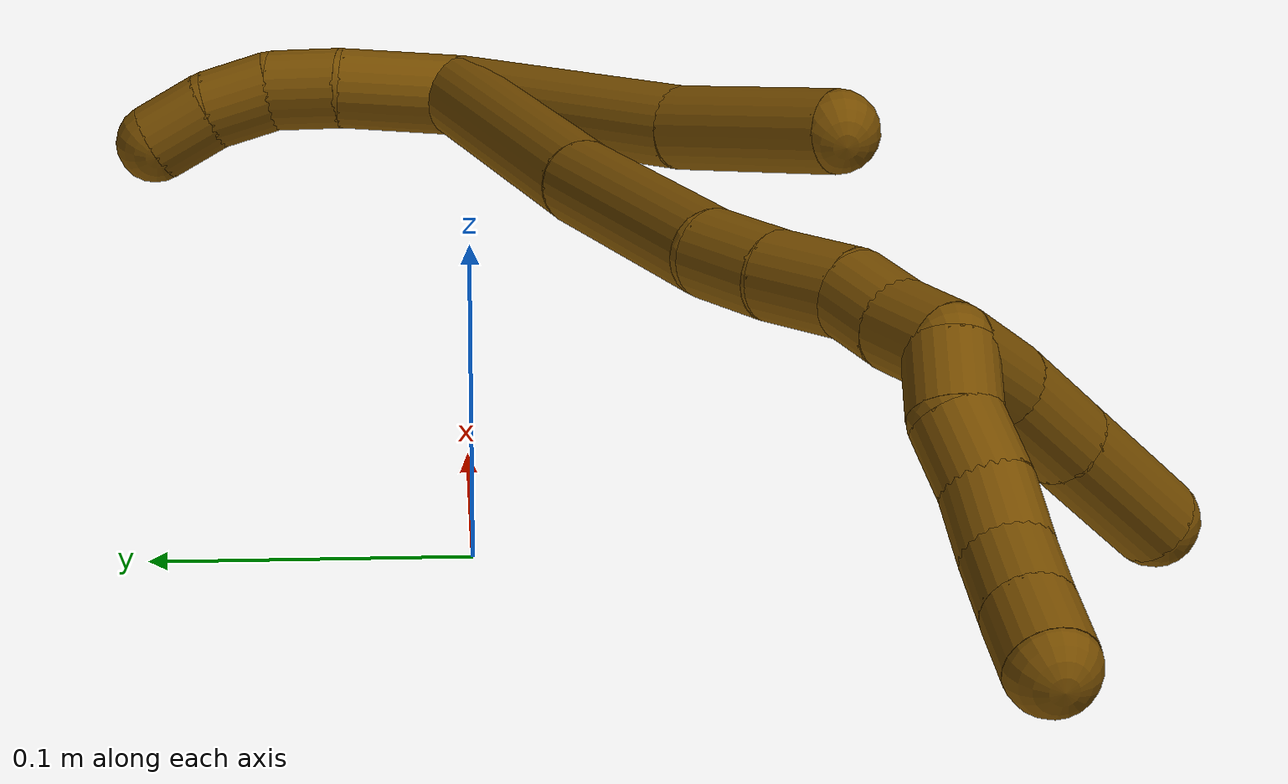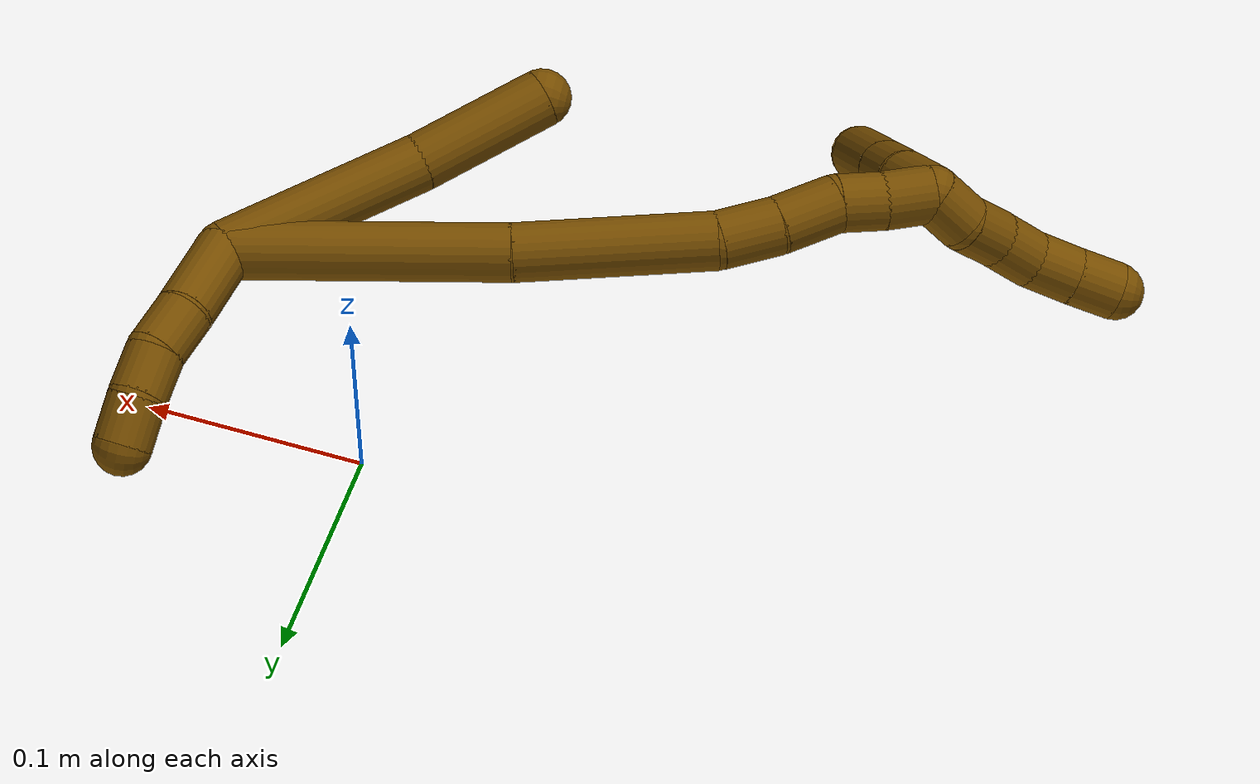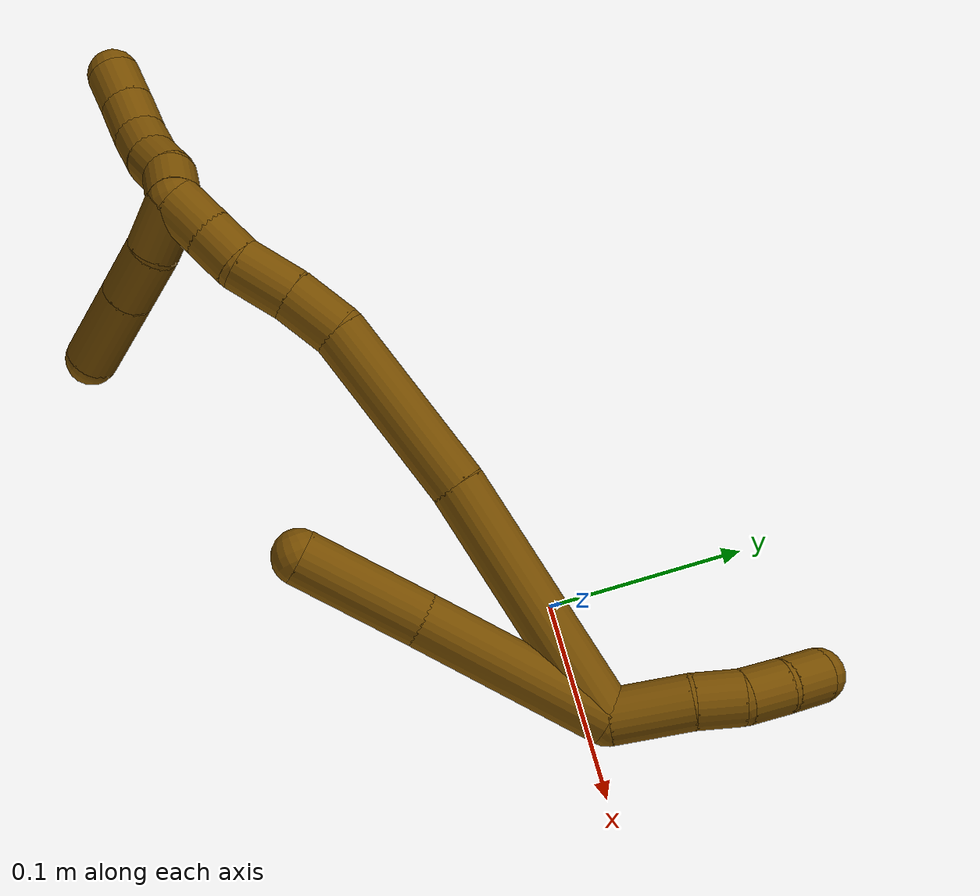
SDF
<sdf version="1.7">
 <world name="default">
  <model name="12">
   <static>0</static>
   <link name="12">
    <collision name="collision-cylinder-e_1_2_8">
     <pose>-0.028532 0.008666 -0.034097 -2.89271 -0.681418 2.46321</pose>
     <geometry><cylinder><radius>0.0125</radius><length>0.090594</length></cylinder></geometry>
     <surface>
      <friction><ode><mu>1.16</mu><mu2>1.16</mu2><slip1>0</slip1><slip2>0</slip2></ode></friction>
      <contact><ode><kp>1e+06</kp><kd>1</kd><max_vel>0</max_vel><min_depth>0.001</min_depth></ode></contact>
     </surface>
    </collision>
    <visual name="visual-cylinder-e_1_2_8">
     <pose>-0.028532 0.008666 -0.034097 -2.89271 -0.681418 2.46321</pose>
     <geometry><cylinder><radius>0.0125</radius><length>0.090594</length></cylinder></geometry>
     <material><ambient>0.466667 0.301961 0 1</ambient></material>
    </visual>
    <collision name="collision-cylinder-e_2_8_6">
     <pose>-0.075736 0.025623 -0.089757 -2.77451 -0.679736 2.17471</pose>
     <geometry><cylinder><radius>0.0125</radius><length>0.059406</length></cylinder></geometry>
     <surface>
      <friction><ode><mu>1.16</mu><mu2>1.16</mu2><slip1>0</slip1><slip2>0</slip2></ode></friction>
      <contact><ode><kp>1e+06</kp><kd>1</kd><max_vel>0</max_vel><min_depth>0.001</min_depth></ode></contact>
     </surface>
    </collision>
    <visual name="visual-cylinder-e_2_8_6">
     <pose>-0.075736 0.025623 -0.089757 -2.77451 -0.679736 2.17471</pose>
     <geometry><cylinder><radius>0.0125</radius><length>0.059406</length></cylinder></geometry>
     <material><ambient>0.466667 0.301961 0 1</ambient></material>
    </visual>
    <collision name="collision-cylinder-e_1_2_9">
     <pose>0.01803 -0.000407 0.004011 0.101199 1.35082 0.081095</pose>
     <geometry><cylinder><radius>0.0125</radius><length>0.036951</length></cylinder></geometry>
     <surface>
      <friction><ode><mu>1.16</mu><mu2>1.16</mu2><slip1>0</slip1><slip2>0</slip2></ode></friction>
      <contact><ode><kp>1e+06</kp><kd>1</kd><max_vel>0</max_vel><min_depth>0.001</min_depth></ode></contact>
     </surface>
    </collision>
    <visual name="visual-cylinder-e_1_2_9">
     <pose>0.01803 -0.000407 0.004011 0.101199 1.35082 0.081095</pose>
     <geometry><cylinder><radius>0.0125</radius><length>0.036951</length></cylinder></geometry>
     <material><ambient>0.466667 0.301961 0 1</ambient></material>
    </visual>
    <collision name="collision-cylinder-e_2_9_10">
     <pose>0.046439 -0.002536 0.011242 0.490889 1.23254 0.351193</pose>
     <geometry><cylinder><radius>0.0125</radius><length>0.022005</length></cylinder></geometry>
     <surface>
      <friction><ode><mu>1.16</mu><mu2>1.16</mu2><slip1>0</slip1><slip2>0</slip2></ode></friction>
      <contact><ode><kp>1e+06</kp><kd>1</kd><max_vel>0</max_vel><min_depth>0.001</min_depth></ode></contact>
     </surface>
    </collision>
    <visual name="visual-cylinder-e_2_9_10">
     <pose>0.046439 -0.002536 0.011242 0.490889 1.23254 0.351193</pose>
     <geometry><cylinder><radius>0.0125</radius><length>0.022005</length></cylinder></geometry>
     <material><ambient>0.466667 0.301961 0 1</ambient></material>
    </visual>
    <collision name="collision-cylinder-e_3_10_11">
     <pose>0.0663 -0.007962 0.015453 1.30927 1.18643 0.955098</pose>
     <geometry><cylinder><radius>0.0125</radius><length>0.020457</length></cylinder></geometry>
     <surface>
      <friction><ode><mu>1.16</mu><mu2>1.16</mu2><slip1>0</slip1><slip2>0</slip2></ode></friction>
      <contact><ode><kp>1e+06</kp><kd>1</kd><max_vel>0</max_vel><min_depth>0.001</min_depth></ode></contact>
     </surface>
    </collision>
    <visual name="visual-cylinder-e_3_10_11">
     <pose>0.0663 -0.007962 0.015453 1.30927 1.18643 0.955098</pose>
     <geometry><cylinder><radius>0.0125</radius><length>0.020457</length></cylinder></geometry>
     <material><ambient>0.466667 0.301961 0 1</ambient></material>
    </visual>
    <collision name="collision-cylinder-e_4_11_5">
     <pose>0.08432 -0.017394 0.016959 1.4813 0.978028 0.905592</pose>
     <geometry><cylinder><radius>0.0125</radius><length>0.020588</length></cylinder></geometry>
     <surface>
      <friction><ode><mu>1.16</mu><mu2>1.16</mu2><slip1>0</slip1><slip2>0</slip2></ode></friction>
      <contact><ode><kp>1e+06</kp><kd>1</kd><max_vel>0</max_vel><min_depth>0.001</min_depth></ode></contact>
     </surface>
    </collision>
    <visual name="visual-cylinder-e_4_11_5">
     <pose>0.08432 -0.017394 0.016959 1.4813 0.978028 0.905592</pose>
     <geometry><cylinder><radius>0.0125</radius><length>0.020588</length></cylinder></geometry>
     <material><ambient>0.466667 0.301961 0 1</ambient></material>
    </visual>
    <collision name="collision-cylinder-e_1_2_12">
     <pose>-0.009936 0.010035 -0.057857 -2.96985 -0.167628 1.54642</pose>
     <geometry><cylinder><radius>0.0125</radius><length>0.11911</length></cylinder></geometry>
     <surface>
      <friction><ode><mu>1.16</mu><mu2>1.16</mu2><slip1>0</slip1><slip2>0</slip2></ode></friction>
      <contact><ode><kp>1e+06</kp><kd>1</kd><max_vel>0</max_vel><min_depth>0.001</min_depth></ode></contact>
     </surface>
    </collision>
    <visual name="visual-cylinder-e_1_2_12">
     <pose>-0.009936 0.010035 -0.057857 -2.96985 -0.167628 1.54642</pose>
     <geometry><cylinder><radius>0.0125</radius><length>0.11911</length></cylinder></geometry>
     <material><ambient>0.466667 0.301961 0 1</ambient></material>
    </visual>
    <collision name="collision-cylinder-e_2_12_13">
     <pose>-0.03056 0.027337 -0.156428 -2.96499 -0.252868 1.92485</pose>
     <geometry><cylinder><radius>0.0125</radius><length>0.085433</length></cylinder></geometry>
     <surface>
      <friction><ode><mu>1.16</mu><mu2>1.16</mu2><slip1>0</slip1><slip2>0</slip2></ode></friction>
      <contact><ode><kp>1e+06</kp><kd>1</kd><max_vel>0</max_vel><min_depth>0.001</min_depth></ode></contact>
     </surface>
    </collision>
    <visual name="visual-cylinder-e_2_12_13">
     <pose>-0.03056 0.027337 -0.156428 -2.96499 -0.252868 1.92485</pose>
     <geometry><cylinder><radius>0.0125</radius><length>0.085433</length></cylinder></geometry>
     <material><ambient>0.466667 0.301961 0 1</ambient></material>
    </visual>
    <collision name="collision-cylinder-e_3_13_14">
     <pose>-0.047629 0.036478 -0.208518 -2.97826 -0.505607 2.52793</pose>
     <geometry><cylinder><radius>0.0125</radius><length>0.026355</length></cylinder></geometry>
     <surface>
      <friction><ode><mu>1.16</mu><mu2>1.16</mu2><slip1>0</slip1><slip2>0</slip2></ode></friction>
      <contact><ode><kp>1e+06</kp><kd>1</kd><max_vel>0</max_vel><min_depth>0.001</min_depth></ode></contact>
     </surface>
    </collision>
    <visual name="visual-cylinder-e_3_13_14">
     <pose>-0.047629 0.036478 -0.208518 -2.97826 -0.505607 2.52793</pose>
     <geometry><cylinder><radius>0.0125</radius><length>0.026355</length></cylinder></geometry>
     <material><ambient>0.466667 0.301961 0 1</ambient></material>
    </visual>
    <collision name="collision-cylinder-e_4_14_15">
     <pose>-0.061932 0.040574 -0.23072 -2.93926 -0.62178 2.52957</pose>
     <geometry><cylinder><radius>0.0125</radius><length>0.027195</length></cylinder></geometry>
     <surface>
      <friction><ode><mu>1.16</mu><mu2>1.16</mu2><slip1>0</slip1><slip2>0</slip2></ode></friction>
      <contact><ode><kp>1e+06</kp><kd>1</kd><max_vel>0</max_vel><min_depth>0.001</min_depth></ode></contact>
     </surface>
    </collision>
    <visual name="visual-cylinder-e_4_14_15">
     <pose>-0.061932 0.040574 -0.23072 -2.93926 -0.62178 2.52957</pose>
     <geometry><cylinder><radius>0.0125</radius><length>0.027195</length></cylinder></geometry>
     <material><ambient>0.466667 0.301961 0 1</ambient></material>
    </visual>
    <collision name="collision-cylinder-e_5_15_16">
     <pose>-0.073679 0.04278 -0.250959 3.14004 -0.386145 -3.13363</pose>
     <geometry><cylinder><radius>0.0125</radius><length>0.02032</length></cylinder></geometry>
     <surface>
      <friction><ode><mu>1.16</mu><mu2>1.16</mu2><slip1>0</slip1><slip2>0</slip2></ode></friction>
      <contact><ode><kp>1e+06</kp><kd>1</kd><max_vel>0</max_vel><min_depth>0.001</min_depth></ode></contact>
     </surface>
    </collision>
    <visual name="visual-cylinder-e_5_15_16">
     <pose>-0.073679 0.04278 -0.250959 3.14004 -0.386145 -3.13363</pose>
     <geometry><cylinder><radius>0.0125</radius><length>0.02032</length></cylinder></geometry>
     <material><ambient>0.466667 0.301961 0 1</ambient></material>
    </visual>
    <collision name="collision-cylinder-e_6_16_1">
     <pose>-0.081682 0.044106 -0.270233 -3.00645 -0.397331 2.49302</pose>
     <geometry><cylinder><radius>0.0125</radius><length>0.021587</length></cylinder></geometry>
     <surface>
      <friction><ode><mu>1.16</mu><mu2>1.16</mu2><slip1>0</slip1><slip2>0</slip2></ode></friction>
      <contact><ode><kp>1e+06</kp><kd>1</kd><max_vel>0</max_vel><min_depth>0.001</min_depth></ode></contact>
     </surface>
    </collision>
    <visual name="visual-cylinder-e_6_16_1">
     <pose>-0.081682 0.044106 -0.270233 -3.00645 -0.397331 2.49302</pose>
     <geometry><cylinder><radius>0.0125</radius><length>0.021587</length></cylinder></geometry>
     <material><ambient>0.466667 0.301961 0 1</ambient></material>
    </visual>
    <collision name="collision-cylinder-e_1_1_17">
     <pose>-0.095086 0.037438 -0.274602 0.969706 -0.759856 -0.414683</pose>
     <geometry><cylinder><radius>0.0125</radius><length>0.026794</length></cylinder></geometry>
     <surface>
      <friction><ode><mu>1.16</mu><mu2>1.16</mu2><slip1>0</slip1><slip2>0</slip2></ode></friction>
      <contact><ode><kp>1e+06</kp><kd>1</kd><max_vel>0</max_vel><min_depth>0.001</min_depth></ode></contact>
     </surface>
    </collision>
    <visual name="visual-cylinder-e_1_1_17">
     <pose>-0.095086 0.037438 -0.274602 0.969706 -0.759856 -0.414683</pose>
     <geometry><cylinder><radius>0.0125</radius><length>0.026794</length></cylinder></geometry>
     <material><ambient>0.466667 0.301961 0 1</ambient></material>
    </visual>
    <collision name="collision-cylinder-e_2_17_18">
     <pose>-0.114663 0.019431 -0.26548 1.22253 -0.771722 -0.554696</pose>
     <geometry><cylinder><radius>0.0125</radius><length>0.029681</length></cylinder></geometry>
     <surface>
      <friction><ode><mu>1.16</mu><mu2>1.16</mu2><slip1>0</slip1><slip2>0</slip2></ode></friction>
      <contact><ode><kp>1e+06</kp><kd>1</kd><max_vel>0</max_vel><min_depth>0.001</min_depth></ode></contact>
     </surface>
    </collision>
    <visual name="visual-cylinder-e_2_17_18">
     <pose>-0.114663 0.019431 -0.26548 1.22253 -0.771722 -0.554696</pose>
     <geometry><cylinder><radius>0.0125</radius><length>0.029681</length></cylinder></geometry>
     <material><ambient>0.466667 0.301961 0 1</ambient></material>
    </visual>
    <collision name="collision-cylinder-e_3_18_4">
     <pose>-0.140221 -0.005208 -0.25656 1.22408 -0.773735 -0.557084</pose>
     <geometry><cylinder><radius>0.0125</radius><length>0.043526</length></cylinder></geometry>
     <surface>
      <friction><ode><mu>1.16</mu><mu2>1.16</mu2><slip1>0</slip1><slip2>0</slip2></ode></friction>
      <contact><ode><kp>1e+06</kp><kd>1</kd><max_vel>0</max_vel><min_depth>0.001</min_depth></ode></contact>
     </surface>
    </collision>
    <visual name="visual-cylinder-e_3_18_4">
     <pose>-0.140221 -0.005208 -0.25656 1.22408 -0.773735 -0.557084</pose>
     <geometry><cylinder><radius>0.0125</radius><length>0.043526</length></cylinder></geometry>
     <material><ambient>0.466667 0.301961 0 1</ambient></material>
    </visual>
    <collision name="collision-cylinder-e_1_1_19">
     <pose>-0.085164 0.039896 -0.288383 2.55147 0.069514 0.227819</pose>
     <geometry><cylinder><radius>0.0125</radius><length>0.02</length></cylinder></geometry>
     <surface>
      <friction><ode><mu>1.16</mu><mu2>1.16</mu2><slip1>0</slip1><slip2>0</slip2></ode></friction>
      <contact><ode><kp>1e+06</kp><kd>1</kd><max_vel>0</max_vel><min_depth>0.001</min_depth></ode></contact>
     </surface>
    </collision>
    <visual name="visual-cylinder-e_1_1_19">
     <pose>-0.085164 0.039896 -0.288383 2.55147 0.069514 0.227819</pose>
     <geometry><cylinder><radius>0.0125</radius><length>0.02</length></cylinder></geometry>
     <material><ambient>0.466667 0.301961 0 1</ambient></material>
    </visual>
    <collision name="collision-cylinder-e_2_19_20">
     <pose>-0.087067 0.028872 -0.304628 2.53902 -0.262836 -0.804356</pose>
     <geometry><cylinder><radius>0.0125</radius><length>0.02</length></cylinder></geometry>
     <surface>
      <friction><ode><mu>1.16</mu><mu2>1.16</mu2><slip1>0</slip1><slip2>0</slip2></ode></friction>
      <contact><ode><kp>1e+06</kp><kd>1</kd><max_vel>0</max_vel><min_depth>0.001</min_depth></ode></contact>
     </surface>
    </collision>
    <visual name="visual-cylinder-e_2_19_20">
     <pose>-0.087067 0.028872 -0.304628 2.53902 -0.262836 -0.804356</pose>
     <geometry><cylinder><radius>0.0125</radius><length>0.02</length></cylinder></geometry>
     <material><ambient>0.466667 0.301961 0 1</ambient></material>
    </visual>
    <collision name="collision-cylinder-e_3_20_21">
     <pose>-0.090726 0.018531 -0.321254 2.62996 -0.106264 -0.401202</pose>
     <geometry><cylinder><radius>0.0125</radius><length>0.02</length></cylinder></geometry>
     <surface>
      <friction><ode><mu>1.16</mu><mu2>1.16</mu2><slip1>0</slip1><slip2>0</slip2></ode></friction>
      <contact><ode><kp>1e+06</kp><kd>1</kd><max_vel>0</max_vel><min_depth>0.001</min_depth></ode></contact>
     </surface>
    </collision>
    <visual name="visual-cylinder-e_3_20_21">
     <pose>-0.090726 0.018531 -0.321254 2.62996 -0.106264 -0.401202</pose>
     <geometry><cylinder><radius>0.0125</radius><length>0.02</length></cylinder></geometry>
     <material><ambient>0.466667 0.301961 0 1</ambient></material>
    </visual>
    <collision name="collision-cylinder-e_4_21_22">
     <pose>-0.092143 0.011335 -0.339643 2.90661 -0.035596 -0.299341</pose>
     <geometry><cylinder><radius>0.0125</radius><length>0.02</length></cylinder></geometry>
     <surface>
      <friction><ode><mu>1.16</mu><mu2>1.16</mu2><slip1>0</slip1><slip2>0</slip2></ode></friction>
      <contact><ode><kp>1e+06</kp><kd>1</kd><max_vel>0</max_vel><min_depth>0.001</min_depth></ode></contact>
     </surface>
    </collision>
    <visual name="visual-cylinder-e_4_21_22">
     <pose>-0.092143 0.011335 -0.339643 2.90661 -0.035596 -0.299341</pose>
     <geometry><cylinder><radius>0.0125</radius><length>0.02</length></cylinder></geometry>
     <material><ambient>0.466667 0.301961 0 1</ambient></material>
    </visual>
    <collision name="collision-cylinder-e_5_22_3">
     <pose>-0.092996 0.006957 -0.359137 2.93475 -0.049796 -0.470971</pose>
     <geometry><cylinder><radius>0.0125</radius><length>0.02</length></cylinder></geometry>
     <surface>
      <friction><ode><mu>1.16</mu><mu2>1.16</mu2><slip1>0</slip1><slip2>0</slip2></ode></friction>
      <contact><ode><kp>1e+06</kp><kd>1</kd><max_vel>0</max_vel><min_depth>0.001</min_depth></ode></contact>
     </surface>
    </collision>
    <visual name="visual-cylinder-e_5_22_3">
     <pose>-0.092996 0.006957 -0.359137 2.93475 -0.049796 -0.470971</pose>
     <geometry><cylinder><radius>0.0125</radius><length>0.02</length></cylinder></geometry>
     <material><ambient>0.466667 0.301961 0 1</ambient></material>
    </visual>
    <collision name="collision-sphere-3">
     <pose>-0.093494 0.004906 -0.368912 0 -0 0</pose>
     <geometry><sphere><radius>0.0125</radius></sphere></geometry>
     <surface>
      <friction><ode><mu>1.16</mu><mu2>1.16</mu2><slip1>0</slip1><slip2>0</slip2></ode></friction>
      <contact><ode><kp>1e+06</kp><kd>1</kd><max_vel>0</max_vel><min_depth>0.001</min_depth></ode></contact>
     </surface>
    </collision>
    <visual name="visual-sphere-3">
     <pose>-0.093494 0.004906 -0.368912 0 -0 0</pose>
     <geometry><sphere><radius>0.0125</radius></sphere></geometry>
     <material><ambient>0.466667 0.301961 0 1</ambient></material>
    </visual>
    <collision name="collision-sphere-22">
     <pose>-0.092498 0.009009 -0.349362 0 -0 0</pose>
     <geometry><sphere><radius>0.0125</radius></sphere></geometry>
     <surface>
      <friction><ode><mu>1.16</mu><mu2>1.16</mu2><slip1>0</slip1><slip2>0</slip2></ode></friction>
      <contact><ode><kp>1e+06</kp><kd>1</kd><max_vel>0</max_vel><min_depth>0.001</min_depth></ode></contact>
     </surface>
    </collision>
    <visual name="visual-sphere-22">
     <pose>-0.092498 0.009009 -0.349362 0 -0 0</pose>
     <geometry><sphere><radius>0.0125</radius></sphere></geometry>
     <material><ambient>0.466667 0.301961 0 1</ambient></material>
    </visual>
    <collision name="collision-sphere-21">
     <pose>-0.091787 0.013662 -0.329924 0 -0 0</pose>
     <geometry><sphere><radius>0.0125</radius></sphere></geometry>
     <surface>
      <friction><ode><mu>1.16</mu><mu2>1.16</mu2><slip1>0</slip1><slip2>0</slip2></ode></friction>
      <contact><ode><kp>1e+06</kp><kd>1</kd><max_vel>0</max_vel><min_depth>0.001</min_depth></ode></contact>
     </surface>
    </collision>
    <visual name="visual-sphere-21">
     <pose>-0.091787 0.013662 -0.329924 0 -0 0</pose>
     <geometry><sphere><radius>0.0125</radius></sphere></geometry>
     <material><ambient>0.466667 0.301961 0 1</ambient></material>
    </visual>
    <collision name="collision-sphere-20">
     <pose>-0.089665 0.023399 -0.312584 0 -0 0</pose>
     <geometry><sphere><radius>0.0125</radius></sphere></geometry>
     <surface>
      <friction><ode><mu>1.16</mu><mu2>1.16</mu2><slip1>0</slip1><slip2>0</slip2></ode></friction>
      <contact><ode><kp>1e+06</kp><kd>1</kd><max_vel>0</max_vel><min_depth>0.001</min_depth></ode></contact>
     </surface>
    </collision>
    <visual name="visual-sphere-20">
     <pose>-0.089665 0.023399 -0.312584 0 -0 0</pose>
     <geometry><sphere><radius>0.0125</radius></sphere></geometry>
     <material><ambient>0.466667 0.301961 0 1</ambient></material>
    </visual>
    <collision name="collision-sphere-19">
     <pose>-0.084469 0.034345 -0.296672 0 -0 0</pose>
     <geometry><sphere><radius>0.0125</radius></sphere></geometry>
     <surface>
      <friction><ode><mu>1.16</mu><mu2>1.16</mu2><slip1>0</slip1><slip2>0</slip2></ode></friction>
      <contact><ode><kp>1e+06</kp><kd>1</kd><max_vel>0</max_vel><min_depth>0.001</min_depth></ode></contact>
     </surface>
    </collision>
    <visual name="visual-sphere-19">
     <pose>-0.084469 0.034345 -0.296672 0 -0 0</pose>
     <geometry><sphere><radius>0.0125</radius></sphere></geometry>
     <material><ambient>0.466667 0.301961 0 1</ambient></material>
    </visual>
    <collision name="collision-sphere-11">
     <pose>0.075783 -0.011667 0.016445 0 -0 0</pose>
     <geometry><sphere><radius>0.0125</radius></sphere></geometry>
     <surface>
      <friction><ode><mu>1.16</mu><mu2>1.16</mu2><slip1>0</slip1><slip2>0</slip2></ode></friction>
      <contact><ode><kp>1e+06</kp><kd>1</kd><max_vel>0</max_vel><min_depth>0.001</min_depth></ode></contact>
     </surface>
    </collision>
    <visual name="visual-sphere-11">
     <pose>0.075783 -0.011667 0.016445 0 -0 0</pose>
     <geometry><sphere><radius>0.0125</radius></sphere></geometry>
     <material><ambient>0.466667 0.301961 0 1</ambient></material>
    </visual>
    <collision name="collision-sphere-10">
     <pose>0.056818 -0.004257 0.014461 0 -0 0</pose>
     <geometry><sphere><radius>0.0125</radius></sphere></geometry>
     <surface>
      <friction><ode><mu>1.16</mu><mu2>1.16</mu2><slip1>0</slip1><slip2>0</slip2></ode></friction>
      <contact><ode><kp>1e+06</kp><kd>1</kd><max_vel>0</max_vel><min_depth>0.001</min_depth></ode></contact>
     </surface>
    </collision>
    <visual name="visual-sphere-10">
     <pose>0.056818 -0.004257 0.014461 0 -0 0</pose>
     <geometry><sphere><radius>0.0125</radius></sphere></geometry>
     <material><ambient>0.466667 0.301961 0 1</ambient></material>
    </visual>
    <collision name="collision-sphere-6">
     <pose>-0.094407 0.033914 -0.111319 0 -0 0</pose>
     <geometry><sphere><radius>0.0125</radius></sphere></geometry>
     <surface>
      <friction><ode><mu>1.16</mu><mu2>1.16</mu2><slip1>0</slip1><slip2>0</slip2></ode></friction>
      <contact><ode><kp>1e+06</kp><kd>1</kd><max_vel>0</max_vel><min_depth>0.001</min_depth></ode></contact>
     </surface>
    </collision>
    <visual name="visual-sphere-6">
     <pose>-0.094407 0.033914 -0.111319 0 -0 0</pose>
     <geometry><sphere><radius>0.0125</radius></sphere></geometry>
     <material><ambient>0.466667 0.301961 0 1</ambient></material>
    </visual>
    <collision name="collision-sphere-9">
     <pose>0.03606 -0.000815 0.008022 0 -0 0</pose>
     <geometry><sphere><radius>0.0125</radius></sphere></geometry>
     <surface>
      <friction><ode><mu>1.16</mu><mu2>1.16</mu2><slip1>0</slip1><slip2>0</slip2></ode></friction>
      <contact><ode><kp>1e+06</kp><kd>1</kd><max_vel>0</max_vel><min_depth>0.001</min_depth></ode></contact>
     </surface>
    </collision>
    <visual name="visual-sphere-9">
     <pose>0.03606 -0.000815 0.008022 0 -0 0</pose>
     <geometry><sphere><radius>0.0125</radius></sphere></geometry>
     <material><ambient>0.466667 0.301961 0 1</ambient></material>
    </visual>
    <collision name="collision-sphere-2">
     <geometry><sphere><radius>0.0125</radius></sphere></geometry>
     <surface>
      <friction><ode><mu>1.16</mu><mu2>1.16</mu2><slip1>0</slip1><slip2>0</slip2></ode></friction>
      <contact><ode><kp>1e+06</kp><kd>1</kd><max_vel>0</max_vel><min_depth>0.001</min_depth></ode></contact>
     </surface>
    </collision>
    <visual name="visual-sphere-2">
     <geometry><sphere><radius>0.0125</radius></sphere></geometry>
     <material><ambient>0.466667 0.301961 0 1</ambient></material>
    </visual>
    <collision name="collision-sphere-8">
     <pose>-0.057065 0.017332 -0.068194 0 -0 0</pose>
     <geometry><sphere><radius>0.0125</radius></sphere></geometry>
     <surface>
      <friction><ode><mu>1.16</mu><mu2>1.16</mu2><slip1>0</slip1><slip2>0</slip2></ode></friction>
      <contact><ode><kp>1e+06</kp><kd>1</kd><max_vel>0</max_vel><min_depth>0.001</min_depth></ode></contact>
     </surface>
    </collision>
    <visual name="visual-sphere-8">
     <pose>-0.057065 0.017332 -0.068194 0 -0 0</pose>
     <geometry><sphere><radius>0.0125</radius></sphere></geometry>
     <material><ambient>0.466667 0.301961 0 1</ambient></material>
    </visual>
    <collision name="collision-sphere-5">
     <pose>0.092858 -0.023122 0.017473 0 -0 0</pose>
     <geometry><sphere><radius>0.0125</radius></sphere></geometry>
     <surface>
      <friction><ode><mu>1.16</mu><mu2>1.16</mu2><slip1>0</slip1><slip2>0</slip2></ode></friction>
      <contact><ode><kp>1e+06</kp><kd>1</kd><max_vel>0</max_vel><min_depth>0.001</min_depth></ode></contact>
     </surface>
    </collision>
    <visual name="visual-sphere-5">
     <pose>0.092858 -0.023122 0.017473 0 -0 0</pose>
     <geometry><sphere><radius>0.0125</radius></sphere></geometry>
     <material><ambient>0.466667 0.301961 0 1</ambient></material>
    </visual>
    <collision name="collision-sphere-12">
     <pose>-0.019873 0.020071 -0.115713 0 -0 0</pose>
     <geometry><sphere><radius>0.0125</radius></sphere></geometry>
     <surface>
      <friction><ode><mu>1.16</mu><mu2>1.16</mu2><slip1>0</slip1><slip2>0</slip2></ode></friction>
      <contact><ode><kp>1e+06</kp><kd>1</kd><max_vel>0</max_vel><min_depth>0.001</min_depth></ode></contact>
     </surface>
    </collision>
    <visual name="visual-sphere-12">
     <pose>-0.019873 0.020071 -0.115713 0 -0 0</pose>
     <geometry><sphere><radius>0.0125</radius></sphere></geometry>
     <material><ambient>0.466667 0.301961 0 1</ambient></material>
    </visual>
    <collision name="collision-sphere-13">
     <pose>-0.041247 0.034603 -0.197142 0 -0 0</pose>
     <geometry><sphere><radius>0.0125</radius></sphere></geometry>
     <surface>
      <friction><ode><mu>1.16</mu><mu2>1.16</mu2><slip1>0</slip1><slip2>0</slip2></ode></friction>
      <contact><ode><kp>1e+06</kp><kd>1</kd><max_vel>0</max_vel><min_depth>0.001</min_depth></ode></contact>
     </surface>
    </collision>
    <visual name="visual-sphere-13">
     <pose>-0.041247 0.034603 -0.197142 0 -0 0</pose>
     <geometry><sphere><radius>0.0125</radius></sphere></geometry>
     <material><ambient>0.466667 0.301961 0 1</ambient></material>
    </visual>
    <collision name="collision-sphere-14">
     <pose>-0.054011 0.038352 -0.219893 0 -0 0</pose>
     <geometry><sphere><radius>0.0125</radius></sphere></geometry>
     <surface>
      <friction><ode><mu>1.16</mu><mu2>1.16</mu2><slip1>0</slip1><slip2>0</slip2></ode></friction>
      <contact><ode><kp>1e+06</kp><kd>1</kd><max_vel>0</max_vel><min_depth>0.001</min_depth></ode></contact>
     </surface>
    </collision>
    <visual name="visual-sphere-14">
     <pose>-0.054011 0.038352 -0.219893 0 -0 0</pose>
     <geometry><sphere><radius>0.0125</radius></sphere></geometry>
     <material><ambient>0.466667 0.301961 0 1</ambient></material>
    </visual>
    <collision name="collision-sphere-15">
     <pose>-0.069852 0.042795 -0.241548 0 -0 0</pose>
     <geometry><sphere><radius>0.0125</radius></sphere></geometry>
     <surface>
      <friction><ode><mu>1.16</mu><mu2>1.16</mu2><slip1>0</slip1><slip2>0</slip2></ode></friction>
      <contact><ode><kp>1e+06</kp><kd>1</kd><max_vel>0</max_vel><min_depth>0.001</min_depth></ode></contact>
     </surface>
    </collision>
    <visual name="visual-sphere-15">
     <pose>-0.069852 0.042795 -0.241548 0 -0 0</pose>
     <geometry><sphere><radius>0.0125</radius></sphere></geometry>
     <material><ambient>0.466667 0.301961 0 1</ambient></material>
    </visual>
    <collision name="collision-sphere-16">
     <pose>-0.077505 0.042765 -0.260371 0 -0 0</pose>
     <geometry><sphere><radius>0.0125</radius></sphere></geometry>
     <surface>
      <friction><ode><mu>1.16</mu><mu2>1.16</mu2><slip1>0</slip1><slip2>0</slip2></ode></friction>
      <contact><ode><kp>1e+06</kp><kd>1</kd><max_vel>0</max_vel><min_depth>0.001</min_depth></ode></contact>
     </surface>
    </collision>
    <visual name="visual-sphere-16">
     <pose>-0.077505 0.042765 -0.260371 0 -0 0</pose>
     <geometry><sphere><radius>0.0125</radius></sphere></geometry>
     <material><ambient>0.466667 0.301961 0 1</ambient></material>
    </visual>
    <collision name="collision-sphere-1">
     <pose>-0.085858 0.045447 -0.280095 0 -0 0</pose>
     <geometry><sphere><radius>0.0125</radius></sphere></geometry>
     <surface>
      <friction><ode><mu>1.16</mu><mu2>1.16</mu2><slip1>0</slip1><slip2>0</slip2></ode></friction>
      <contact><ode><kp>1e+06</kp><kd>1</kd><max_vel>0</max_vel><min_depth>0.001</min_depth></ode></contact>
     </surface>
    </collision>
    <visual name="visual-sphere-1">
     <pose>-0.085858 0.045447 -0.280095 0 -0 0</pose>
     <geometry><sphere><radius>0.0125</radius></sphere></geometry>
     <material><ambient>0.466667 0.301961 0 1</ambient></material>
    </visual>
    <collision name="collision-sphere-18">
     <pose>-0.125012 0.009433 -0.26185 0 -0 0</pose>
     <geometry><sphere><radius>0.0125</radius></sphere></geometry>
     <surface>
      <friction><ode><mu>1.16</mu><mu2>1.16</mu2><slip1>0</slip1><slip2>0</slip2></ode></friction>
      <contact><ode><kp>1e+06</kp><kd>1</kd><max_vel>0</max_vel><min_depth>0.001</min_depth></ode></contact>
     </surface>
    </collision>
    <visual name="visual-sphere-18">
     <pose>-0.125012 0.009433 -0.26185 0 -0 0</pose>
     <geometry><sphere><radius>0.0125</radius></sphere></geometry>
     <material><ambient>0.466667 0.301961 0 1</ambient></material>
    </visual>
    <collision name="collision-sphere-17">
     <pose>-0.104314 0.029428 -0.26911 0 -0 0</pose>
     <geometry><sphere><radius>0.0125</radius></sphere></geometry>
     <surface>
      <friction><ode><mu>1.16</mu><mu2>1.16</mu2><slip1>0</slip1><slip2>0</slip2></ode></friction>
      <contact><ode><kp>1e+06</kp><kd>1</kd><max_vel>0</max_vel><min_depth>0.001</min_depth></ode></contact>
     </surface>
    </collision>
    <visual name="visual-sphere-17">
     <pose>-0.104314 0.029428 -0.26911 0 -0 0</pose>
     <geometry><sphere><radius>0.0125</radius></sphere></geometry>
     <material><ambient>0.466667 0.301961 0 1</ambient></material>
    </visual>
    <collision name="collision-sphere-4">
     <pose>-0.155429 -0.019849 -0.25127 0 -0 0</pose>
     <geometry><sphere><radius>0.0125</radius></sphere></geometry>
     <surface>
      <friction><ode><mu>1.16</mu><mu2>1.16</mu2><slip1>0</slip1><slip2>0</slip2></ode></friction>
      <contact><ode><kp>1e+06</kp><kd>1</kd><max_vel>0</max_vel><min_depth>0.001</min_depth></ode></contact>
     </surface>
    </collision>
    <visual name="visual-sphere-4">
     <pose>-0.155429 -0.019849 -0.25127 0 -0 0</pose>
     <geometry><sphere><radius>0.0125</radius></sphere></geometry>
     <material><ambient>0.466667 0.301961 0 1</ambient></material>
    </visual>
    <inertial>
     <pose>-0.044419 0.016796 -0.145311 0 -0 0</pose>
     <mass>0.75</mass>
     <inertia>
      <ixx>0.000171</ixx>
      <ixy>0</ixy>
      <ixz>0</ixz>
      <iyy>0.000345</iyy>
      <iyz>0</iyz>
      <izz>2.4e-05</izz>
     </inertia>
    </inertial>
   </link>
   <pose>0.052385 0.002255 0.134076 1.41727 -0.038957 1.6909</pose>
  </model>
 </world>
</sdf>
